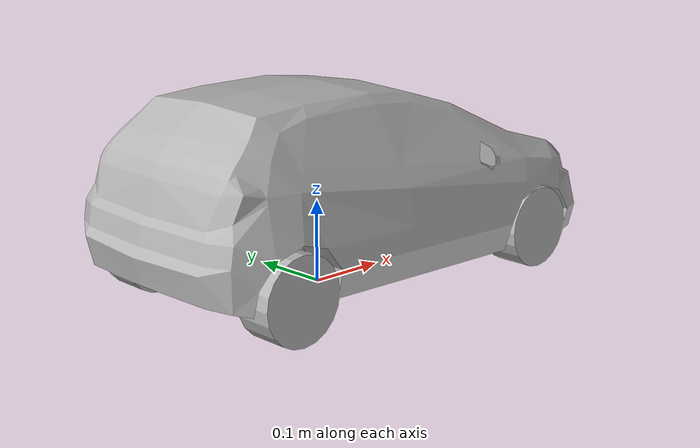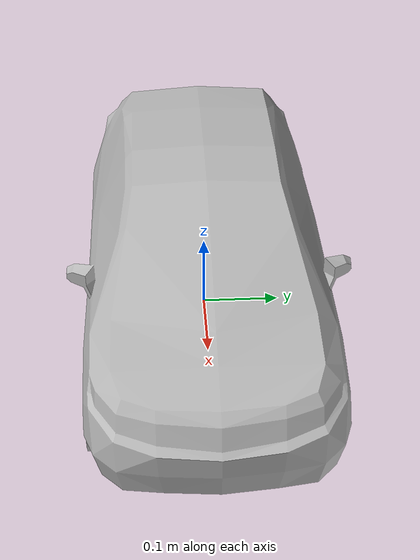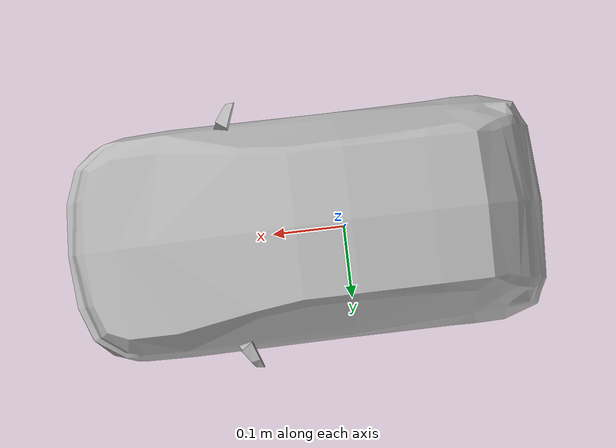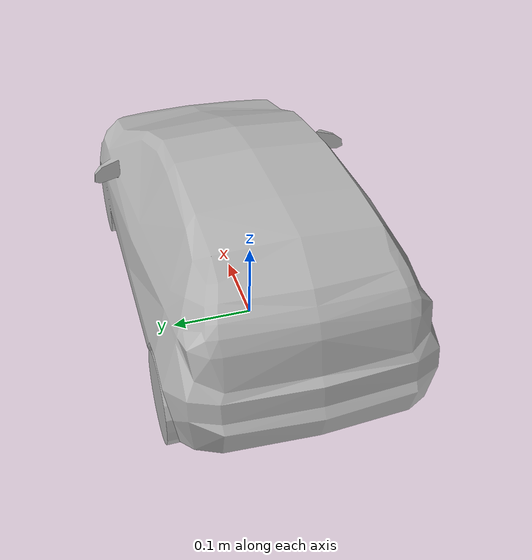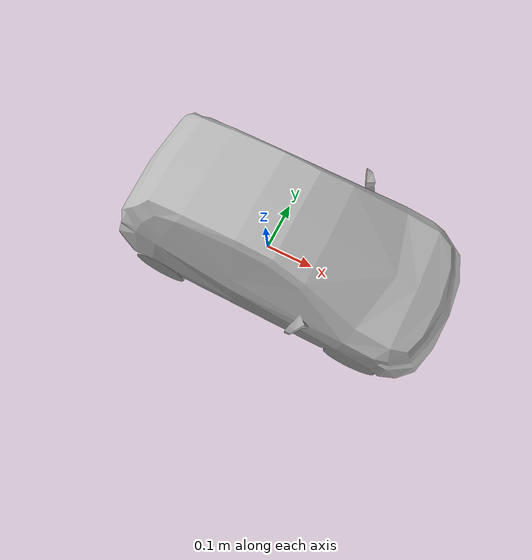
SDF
<?xml version="1.0" ?>
<sdf version="1.6">
  <model name="hatchback_red">
  <plugin filename="gz-sim-contact-system"
          name="gz::sim::systems::Contact">
    </plugin>
    <static>true</static>
    <link name="link">
      <collision name="collision">
        <pose>0 0 0 0 0 1.57079632679</pose>
        <geometry>
          <mesh>
            <scale>0.004 0.004 0.004</scale>
            <uri>meshes/hatchback_red.obj</uri>
          </mesh>
        </geometry>
      </collision>
      <visual name="visual">
        <pose>0 0 0 0 0 1.57079632679</pose>
        <geometry>
          <mesh>
            <scale>0.004 0.004 0.004</scale>
            <uri>meshes/hatchback_red.obj</uri>
          </mesh>
        </geometry>
      </visual>
      <sensor name='sensor_contact' type='contact'>
          <contact>
            <collision>collision</collision>
            <topic>/collision_detect</topic>
          </contact>
          <always_on>1</always_on>
          <update_rate>100</update_rate>
        </sensor>
    </link>
  </model>
</sdf>
